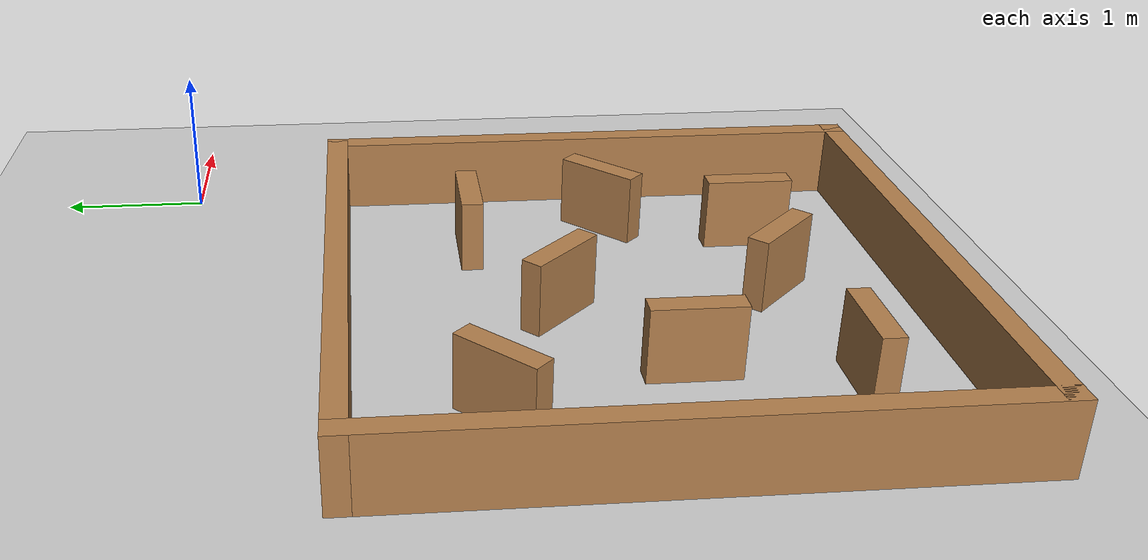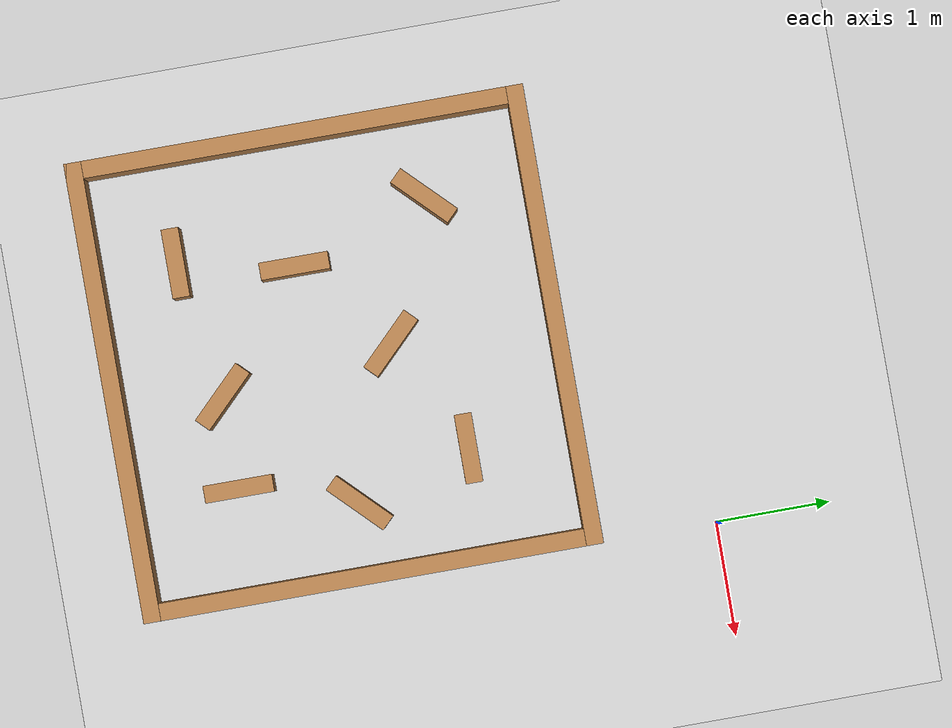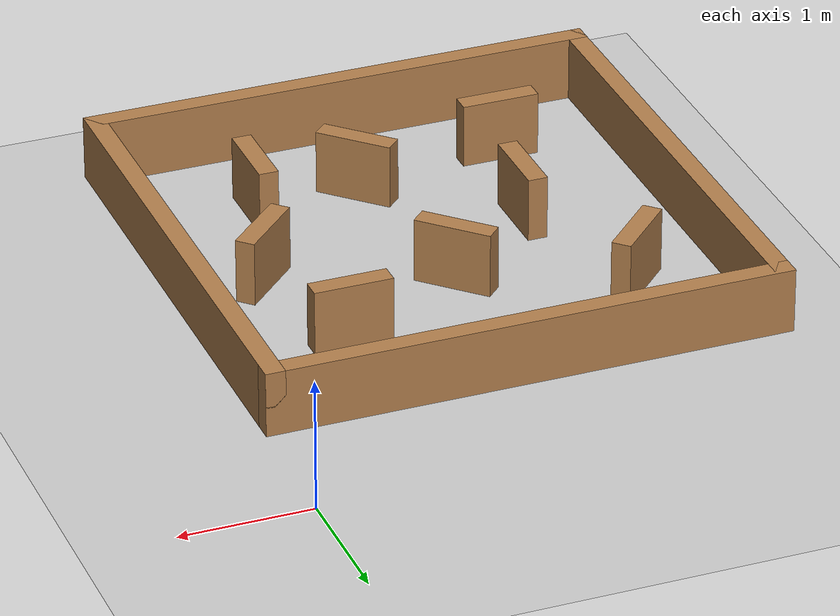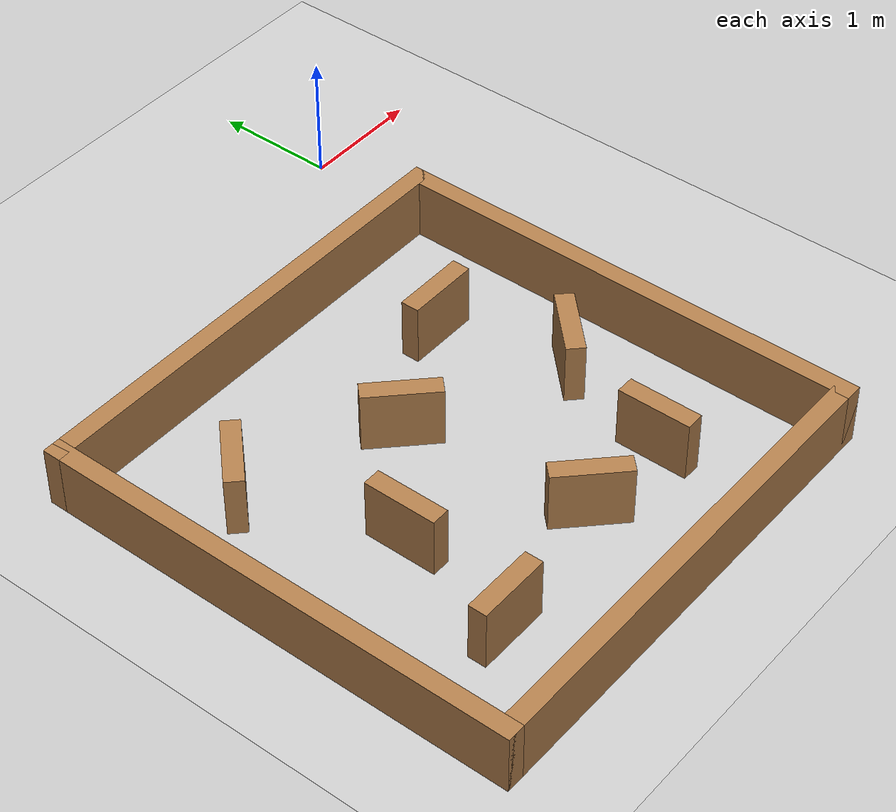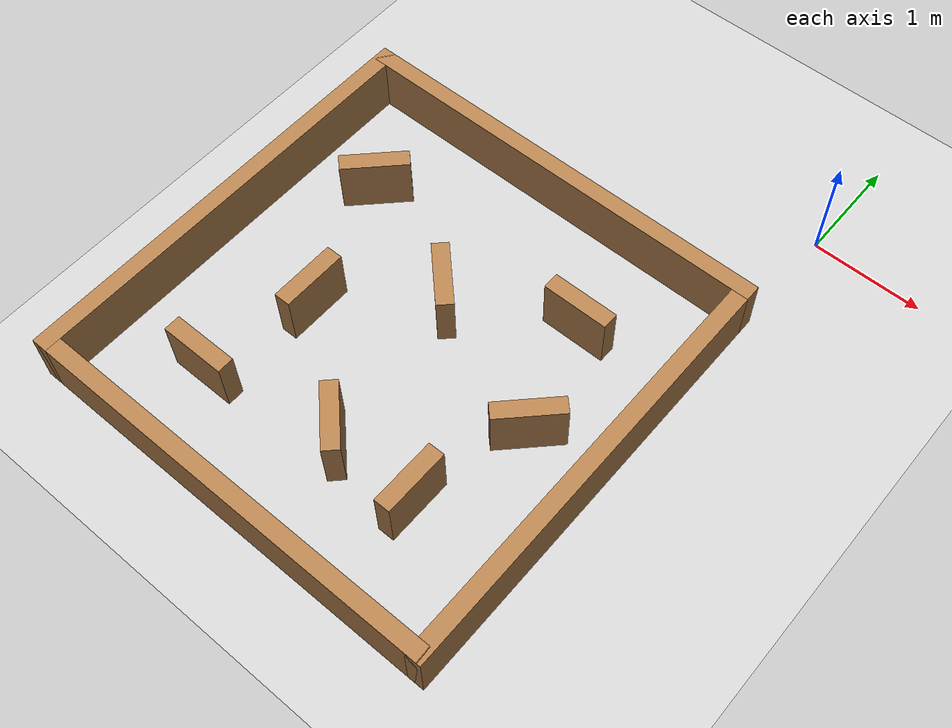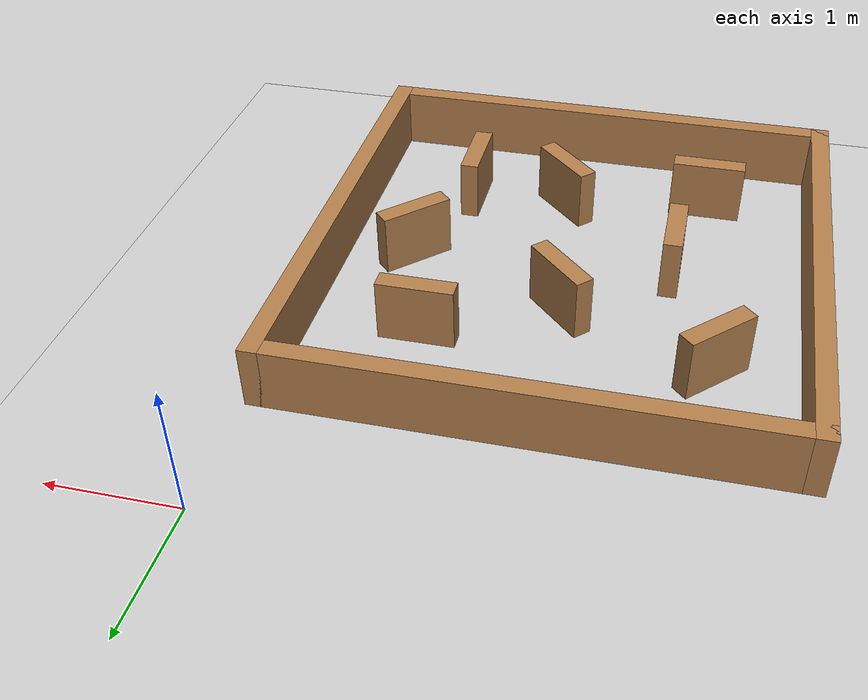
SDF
<sdf version="1.6">
 <world name="default">
  <model name="ground_plane">
   <static>1</static>
   <link name="link">
    <collision name="collision">
     <geometry><plane><normal>0 0 1</normal><size>100 100</size></plane></geometry>
     <surface><friction><ode><mu>100</mu><mu2>50</mu2></ode></friction></surface>
    </collision>
    <visual name="visual">
     <cast_shadows>0</cast_shadows>
     <geometry><plane><normal>0 0 1</normal><size>100 100</size></plane></geometry>
     <material>
      <script><uri>file://media/materials/scripts/gazebo.material</uri><name>Gazebo/Grey</name></script>
     </material>
    </visual>
   </link>
  </model>
  <model name="static_obstacles">
   <pose>-2 -3 0 0 -0 0</pose>
   <link name="Wall_0">
    <collision name="Wall_0_Collision">
     <geometry><box><size>4 0.15 0.5</size></box></geometry>
     <pose>0 0 0.25 0 -0 0</pose>
    </collision>
    <visual name="Wall_0_Visual">
     <pose>0 0 0.25 0 -0 0</pose>
     <geometry><box><size>4 0.15 0.5</size></box></geometry>
     <material>
      <script><uri>file://media/materials/scripts/gazebo.material</uri><name>Gazebo/Wood</name></script>
      <ambient>1 1 1 1</ambient>
     </material>
    </visual>
    <pose>0 1.925 0 0 -0 0</pose>
   </link>
   <link name="Wall_2">
    <collision name="Wall_2_Collision">
     <geometry><box><size>4 0.15 0.5</size></box></geometry>
     <pose>0 0 0.25 0 -0 0</pose>
    </collision>
    <visual name="Wall_2_Visual">
     <pose>0 0 0.25 0 -0 0</pose>
     <geometry><box><size>4 0.15 0.5</size></box></geometry>
     <material>
      <script><uri>file://media/materials/scripts/gazebo.material</uri><name>Gazebo/Wood</name></script>
      <ambient>1 1 1 1</ambient>
     </material>
    </visual>
    <pose>-1.925 0 0 0 0 -1.5708</pose>
   </link>
   <link name="Wall_3">
    <collision name="Wall_3_Collision">
     <geometry><box><size>4 0.15 0.5</size></box></geometry>
     <pose>0 0 0.25 0 -0 0</pose>
    </collision>
    <visual name="Wall_3_Visual">
     <pose>0 0 0.25 0 -0 0</pose>
     <geometry><box><size>4 0.15 0.5</size></box></geometry>
     <material>
      <script><uri>file://media/materials/scripts/gazebo.material</uri><name>Gazebo/Wood</name></script>
      <ambient>1 1 1 1</ambient>
     </material>
    </visual>
    <pose>0 -1.925 0 0 -0 0</pose>
   </link>
   <link name="Wall_4">
    <collision name="Wall_4_Collision">
     <geometry><box><size>4 0.15 0.5</size></box></geometry>
     <pose>0 0 0.25 0 -0 0</pose>
    </collision>
    <visual name="Wall_4_Visual">
     <pose>0 0 0.25 0 -0 0</pose>
     <geometry><box><size>4 0.15 0.5</size></box></geometry>
     <material>
      <script><uri>file://media/materials/scripts/gazebo.material</uri><name>Gazebo/Wood</name></script>
      <ambient>1 1 1 1</ambient>
     </material>
    </visual>
    <pose>1.925 0 0 0 -0 1.5708</pose>
   </link>
   <link name="obstacle_1">
    <collision name="obstacle_1_Collision">
     <geometry><box><size>0.6 0.15 0.5</size></box></geometry>
     <pose>0 0 0.25 0 -0 0.785</pose>
    </collision>
    <visual name="obstacle_1_Visual">
     <pose>0 0 0.25 0 -0 0.785</pose>
     <geometry><box><size>0.6 0.15 0.5</size></box></geometry>
     <material>
      <script><uri>file://media/materials/scripts/gazebo.material</uri><name>Gazebo/Wood</name></script>
      <ambient>1 1 1 1</ambient>
     </material>
    </visual>
    <pose>0 0.5 0 0 -0 1.5708</pose>
   </link>
   <link name="obstacle_2">
    <collision name="obstacle_2_Collision">
     <geometry><box><size>0.6 0.15 0.5</size></box></geometry>
     <pose>0 0 0.25 0 0 -0.785</pose>
    </collision>
    <visual name="obstacle_2_Visual">
     <pose>0 0 0.25 0 0 -0.785</pose>
     <geometry><box><size>0.6 0.15 0.5</size></box></geometry>
     <material>
      <script><uri>file://media/materials/scripts/gazebo.material</uri><name>Gazebo/Wood</name></script>
      <ambient>1 1 1 1</ambient>
     </material>
    </visual>
    <pose>-1.2 1 0 0 -0 1.5708</pose>
   </link>
   <link name="obstacle_3">
    <collision name="obstacle_3_Collision">
     <geometry><box><size>0.6 0.15 0.5</size></box></geometry>
     <pose>0 0 0.25 0 -0 0</pose>
    </collision>
    <visual name="obstacle_3_Visual">
     <pose>0 0 0.25 0 -0 0</pose>
     <geometry><box><size>0.6 0.15 0.5</size></box></geometry>
     <material>
      <script><uri>file://media/materials/scripts/gazebo.material</uri><name>Gazebo/Wood</name></script>
      <ambient>1 1 1 1</ambient>
     </material>
    </visual>
    <pose>-0.8 -0.2 0 0 -0 1.5708</pose>
   </link>
   <link name="obstacle_4">
    <collision name="obstacle_4_Collision">
     <geometry><box><size>0.6 0.15 0.5</size></box></geometry>
     <pose>0 0 0.25 0 -0 0.785</pose>
    </collision>
    <visual name="obstacle_4_Visual">
     <pose>0 0 0.25 0 -0 0.785</pose>
     <geometry><box><size>0.6 0.15 0.5</size></box></geometry>
     <material>
      <script><uri>file://media/materials/scripts/gazebo.material</uri><name>Gazebo/Wood</name></script>
      <ambient>1 1 1 1</ambient>
     </material>
    </visual>
    <pose>0.2 -1 0 0 -0 1.5708</pose>
   </link>
   <link name="obstacle_5">
    <collision name="obstacle_5_Collision">
     <geometry><box><size>0.6 0.15 0.5</size></box></geometry>
     <pose>0 0 0.25 0 -0 0</pose>
    </collision>
    <visual name="obstacle_5_Visual">
     <pose>0 0 0.25 0 -0 0</pose>
     <geometry><box><size>0.6 0.15 0.5</size></box></geometry>
     <material>
      <script><uri>file://media/materials/scripts/gazebo.material</uri><name>Gazebo/Wood</name></script>
      <ambient>1 1 1 1</ambient>
     </material>
    </visual>
    <pose>-1 -1.2 0 0 -0 0</pose>
   </link>
   <link name="obstacle_6">
    <collision name="obstacle_6_Collision">
     <geometry><box><size>0.6 0.15 0.5</size></box></geometry>
     <pose>0 0 0.25 0 -0 0</pose>
    </collision>
    <visual name="obstacle_6_Visual">
     <pose>0 0 0.25 0 -0 0</pose>
     <geometry><box><size>0.6 0.15 0.5</size></box></geometry>
     <material>
      <script><uri>file://media/materials/scripts/gazebo.material</uri><name>Gazebo/Wood</name></script>
      <ambient>1 1 1 1</ambient>
     </material>
    </visual>
    <pose>1 -1 0 0 -0 1.5708</pose>
   </link>
   <link name="obstacle_7">
    <collision name="obstacle_7_Collision">
     <geometry><box><size>0.6 0.15 0.5</size></box></geometry>
     <pose>0 0 0.25 0 -0 0</pose>
    </collision>
    <visual name="obstacle_7_Visual">
     <pose>0 0 0.25 0 -0 0</pose>
     <geometry><box><size>0.6 0.15 0.5</size></box></geometry>
     <material>
      <script><uri>file://media/materials/scripts/gazebo.material</uri><name>Gazebo/Wood</name></script>
      <ambient>1 1 1 1</ambient>
     </material>
    </visual>
    <pose>1 1 0 0 -0 0</pose>
   </link>
   <link name="obstacle_7">
    <collision name="obstacle_7_Collision">
     <geometry><box><size>0.6 0.15 0.5</size></box></geometry>
     <pose>0 0 0.25 0 -0 0</pose>
    </collision>
    <visual name="obstacle_7_Visual">
     <pose>0 0 0.25 0 -0 0</pose>
     <geometry><box><size>0.6 0.15 0.5</size></box></geometry>
     <material>
      <script><uri>file://media/materials/scripts/gazebo.material</uri><name>Gazebo/Wood</name></script>
      <ambient>1 1 1 1</ambient>
     </material>
    </visual>
    <pose>1.3 0 0 0 -0 0.785</pose>
   </link>
   <static>1</static>
  </model>
 </world>
</sdf>
